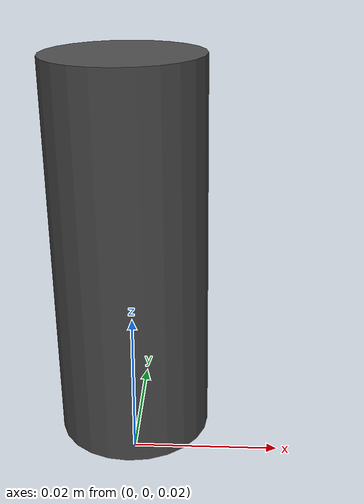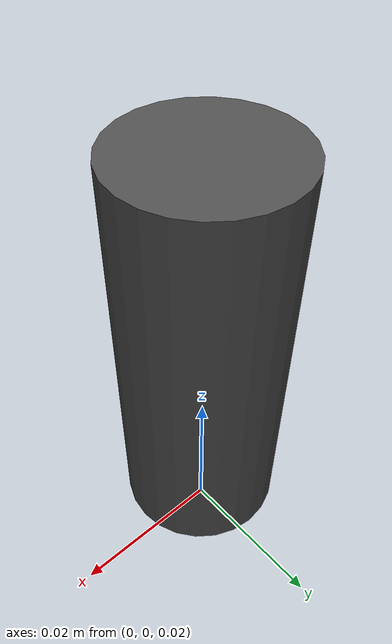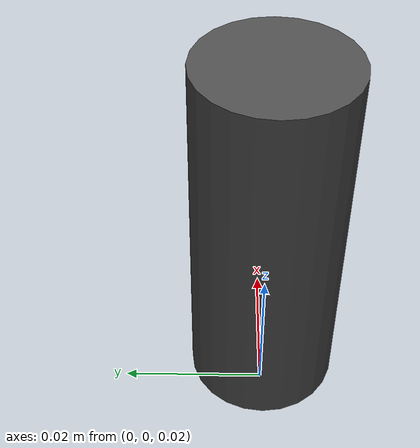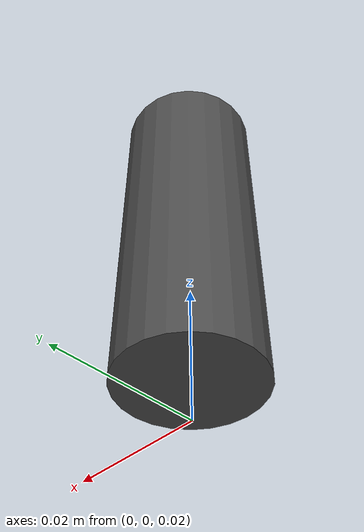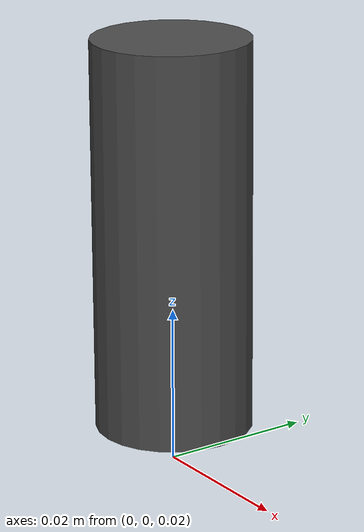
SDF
<?xml version='1.0'?>
<sdf version='1.6'>
<model name='2d_lidar'>
    <link name="lidar_link">
        <pose>0 0 0.05 0 -0.0085 0</pose>

        <inertial>
        <pose>0 0 0 0 -0 0</pose>
        <mass>0.01</mass>
        <inertia>
            <ixx>2.1733e-6</ixx>
            <ixy>0</ixy>
            <ixz>0</ixz>
            <iyy>2.1733e-6</iyy>
            <iyz>0</iyz>
            <izz>1.8e-7</izz>
        </inertia>
        </inertial>

        <visual name="lidar_visual">
        <geometry>
            <cylinder>
            <radius>0.01</radius>
            <length>0.05</length>
            </cylinder>
        </geometry>
        <material>
            <script>
            <name>Gazebo/DarkGrey</name>
            <uri>file://media/materials/scripts/gazebo.material</uri>
            </script>
        </material>
        </visual>

        <sensor name="laser" type="ray">
        <pose>0 0 0.02 0 0 0</pose>
        <ray>
            <scan>
            <horizontal>
                <samples>720</samples>
                <resolution>1</resolution>
                <min_angle>-2.0944</min_angle>
                <max_angle>2.0944</max_angle>
            </horizontal>
            </scan>
            <range>
            <min>0.1</min>
            <max>15</max>
            <resolution>0.01</resolution>
            </range>
            <noise>
            <type>gaussian</type>
            <mean>0.0</mean>
            <stddev>0.01</stddev>
            </noise>
        </ray>
        <plugin name="LaserPlugin" filename="libgazebo_ros_laser.so">
            <topicName>/laser/scan</topicName>
            <frameName>/lidar_link</frameName>
            </plugin>
        <always_on>1</always_on>
        <update_rate>40</update_rate>
        <visualize>true</visualize>
        </sensor>
    </link>
</model>
</sdf>
